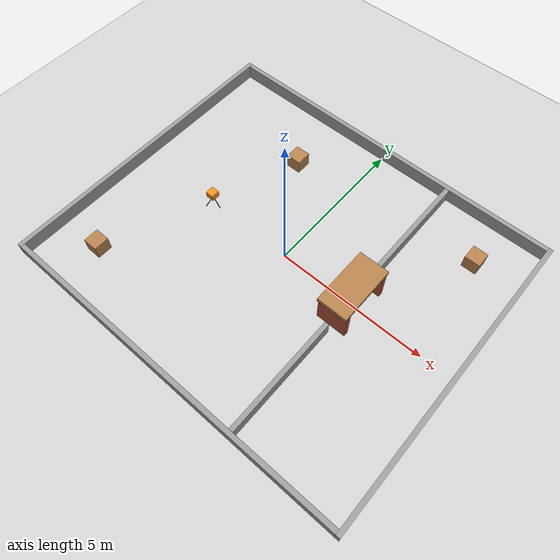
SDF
<?xml version="1.0"?>
<sdf version="1.6">
  <world name="fyp_arena">

    <include>
      <uri>model://sun</uri>
    </include>
    <include>
      <uri>model://ground_plane</uri>
    </include>

    <scene>
      <shadows>false</shadows>
    </scene>

    <!-- ==================== outer walls (in map) ==================== -->
    <model name="arena_walls">
      <static>true</static>
      <link name="link">
        <collision name="north_col">
          <pose>0 5.075 0.25 0 0 0</pose>
          <geometry><box><size>12.0 0.15 0.5</size></box></geometry>
        </collision>
        <visual name="north_vis">
          <pose>0 5.075 0.25 0 0 0</pose>
          <geometry><box><size>12.0 0.15 0.5</size></box></geometry>
          <material><script><uri>file://media/materials/scripts/gazebo.material</uri><name>Gazebo/Grey</name></script></material>
        </visual>
        <collision name="south_col">
          <pose>0 -5.075 0.25 0 0 0</pose>
          <geometry><box><size>12.0 0.15 0.5</size></box></geometry>
        </collision>
        <visual name="south_vis">
          <pose>0 -5.075 0.25 0 0 0</pose>
          <geometry><box><size>12.0 0.15 0.5</size></box></geometry>
          <material><script><uri>file://media/materials/scripts/gazebo.material</uri><name>Gazebo/Grey</name></script></material>
        </visual>
        <collision name="east_col">
          <pose>6.075 0 0.25 0 0 0</pose>
          <geometry><box><size>0.15 10.3 0.5</size></box></geometry>
        </collision>
        <visual name="east_vis">
          <pose>6.075 0 0.25 0 0 0</pose>
          <geometry><box><size>0.15 10.3 0.5</size></box></geometry>
          <material><script><uri>file://media/materials/scripts/gazebo.material</uri><name>Gazebo/Grey</name></script></material>
        </visual>
        <collision name="west_col">
          <pose>-6.075 0 0.25 0 0 0</pose>
          <geometry><box><size>0.15 10.3 0.5</size></box></geometry>
        </collision>
        <visual name="west_vis">
          <pose>-6.075 0 0.25 0 0 0</pose>
          <geometry><box><size>0.15 10.3 0.5</size></box></geometry>
          <material><script><uri>file://media/materials/scripts/gazebo.material</uri><name>Gazebo/Grey</name></script></material>
        </visual>
      </link>
    </model>

    <!-- ============ divider wall with doorway (in map) ============== -->
    <model name="divider_wall">
      <static>true</static>
      <link name="link">
        <collision name="north_seg_col">
          <pose>2.5 3.05 0.25 0 0 0</pose>
          <geometry><box><size>0.15 3.9 0.5</size></box></geometry>
        </collision>
        <visual name="north_seg_vis">
          <pose>2.5 3.05 0.25 0 0 0</pose>
          <geometry><box><size>0.15 3.9 0.5</size></box></geometry>
          <material><script><uri>file://media/materials/scripts/gazebo.material</uri><name>Gazebo/Grey</name></script></material>
        </visual>
        <collision name="south_seg_col">
          <pose>2.5 -3.05 0.25 0 0 0</pose>
          <geometry><box><size>0.15 3.9 0.5</size></box></geometry>
        </collision>
        <visual name="south_seg_vis">
          <pose>2.5 -3.05 0.25 0 0 0</pose>
          <geometry><box><size>0.15 3.9 0.5</size></box></geometry>
          <material><script><uri>file://media/materials/scripts/gazebo.material</uri><name>Gazebo/Grey</name></script></material>
        </visual>
      </link>
    </model>

    <!-- ================ landmark boxes (in map) ===================== -->
    <model name="landmark_1">
      <static>true</static>
      <pose>-2.0 3.0 0.25 0 0 0</pose>
      <link name="link">
        <collision name="col"><geometry><box><size>0.5 0.5 0.5</size></box></geometry></collision>
        <visual name="vis">
          <geometry><box><size>0.5 0.5 0.5</size></box></geometry>
          <material><script><uri>file://media/materials/scripts/gazebo.material</uri><name>Gazebo/Wood</name></script></material>
        </visual>
      </link>
    </model>
    <model name="landmark_2">
      <static>true</static>
      <pose>-4.5 -3.5 0.25 0 0 0</pose>
      <link name="link">
        <collision name="col"><geometry><box><size>0.5 0.5 0.5</size></box></geometry></collision>
        <visual name="vis">
          <geometry><box><size>0.5 0.5 0.5</size></box></geometry>
          <material><script><uri>file://media/materials/scripts/gazebo.material</uri><name>Gazebo/Wood</name></script></material>
        </visual>
      </link>
    </model>
    <model name="landmark_3">
      <static>true</static>
      <pose>4.5 3.5 0.25 0 0 0</pose>
      <link name="link">
        <collision name="col"><geometry><box><size>0.5 0.5 0.5</size></box></geometry></collision>
        <visual name="vis">
          <geometry><box><size>0.5 0.5 0.5</size></box></geometry>
          <material><script><uri>file://media/materials/scripts/gazebo.material</uri><name>Gazebo/Wood</name></script></material>
        </visual>
      </link>
    </model>

    <!-- ================== bridge (NOT in map) ======================= -->
    <!-- Opening: 1.5 m wide (between support inner faces at y = +/-0.75),
         1.05 m clearance under the deck. Sits in the divider doorway, so
         the only way to the east half is underneath it. -->
    <model name="bridge">
      <static>true</static>
      <link name="link">
        <collision name="support_left_col">
          <pose>2.5 0.825 0.525 0 0 0</pose>
          <geometry><box><size>1.0 0.15 1.05</size></box></geometry>
        </collision>
        <visual name="support_left_vis">
          <pose>2.5 0.825 0.525 0 0 0</pose>
          <geometry><box><size>1.0 0.15 1.05</size></box></geometry>
          <material><script><uri>file://media/materials/scripts/gazebo.material</uri><name>Gazebo/Bricks</name></script></material>
        </visual>
        <collision name="support_right_col">
          <pose>2.5 -0.825 0.525 0 0 0</pose>
          <geometry><box><size>1.0 0.15 1.05</size></box></geometry>
        </collision>
        <visual name="support_right_vis">
          <pose>2.5 -0.825 0.525 0 0 0</pose>
          <geometry><box><size>1.0 0.15 1.05</size></box></geometry>
          <material><script><uri>file://media/materials/scripts/gazebo.material</uri><name>Gazebo/Bricks</name></script></material>
        </visual>
        <collision name="deck_col">
          <pose>2.5 0 1.125 0 0 0</pose>
          <geometry><box><size>1.0 1.95 0.15</size></box></geometry>
        </collision>
        <visual name="deck_vis">
          <pose>2.5 0 1.125 0 0 0</pose>
          <geometry><box><size>1.0 1.95 0.15</size></box></geometry>
          <material><script><uri>file://media/materials/scripts/gazebo.material</uri><name>Gazebo/Wood</name></script></material>
        </visual>
      </link>
    </model>

    <!-- ================== tripod (NOT in map) ======================= -->
    <!-- Three thin legs (r = 12 mm), thin centre stick, box on top
         spanning z = 0.42-0.64 m. Leg feet on a 0.26 m radius circle. -->
    <model name="tripod">
      <static>true</static>
      <pose>-3.0 0 0 0 0 0</pose>
      <link name="link">
        <collision name="leg1_col">
          <pose>0.13 0 0.20 0 -0.576 0</pose>
          <geometry><cylinder><radius>0.012</radius><length>0.48</length></cylinder></geometry>
        </collision>
        <visual name="leg1_vis">
          <pose>0.13 0 0.20 0 -0.576 0</pose>
          <geometry><cylinder><radius>0.012</radius><length>0.48</length></cylinder></geometry>
          <material><script><uri>file://media/materials/scripts/gazebo.material</uri><name>Gazebo/DarkGrey</name></script></material>
        </visual>
        <collision name="leg2_col">
          <pose>-0.065 0.11258 0.20 0 -0.576 2.0944</pose>
          <geometry><cylinder><radius>0.012</radius><length>0.48</length></cylinder></geometry>
        </collision>
        <visual name="leg2_vis">
          <pose>-0.065 0.11258 0.20 0 -0.576 2.0944</pose>
          <geometry><cylinder><radius>0.012</radius><length>0.48</length></cylinder></geometry>
          <material><script><uri>file://media/materials/scripts/gazebo.material</uri><name>Gazebo/DarkGrey</name></script></material>
        </visual>
        <collision name="leg3_col">
          <pose>-0.065 -0.11258 0.20 0 -0.576 4.18879</pose>
          <geometry><cylinder><radius>0.012</radius><length>0.48</length></cylinder></geometry>
        </collision>
        <visual name="leg3_vis">
          <pose>-0.065 -0.11258 0.20 0 -0.576 4.18879</pose>
          <geometry><cylinder><radius>0.012</radius><length>0.48</length></cylinder></geometry>
          <material><script><uri>file://media/materials/scripts/gazebo.material</uri><name>Gazebo/DarkGrey</name></script></material>
        </visual>
        <collision name="stick_col">
          <pose>0 0 0.43 0 0 0</pose>
          <geometry><cylinder><radius>0.010</radius><length>0.14</length></cylinder></geometry>
        </collision>
        <visual name="stick_vis">
          <pose>0 0 0.43 0 0 0</pose>
          <geometry><cylinder><radius>0.010</radius><length>0.14</length></cylinder></geometry>
          <material><script><uri>file://media/materials/scripts/gazebo.material</uri><name>Gazebo/DarkGrey</name></script></material>
        </visual>
        <collision name="box_col">
          <pose>0 0 0.53 0 0 0</pose>
          <geometry><box><size>0.28 0.28 0.22</size></box></geometry>
        </collision>
        <visual name="box_vis">
          <pose>0 0 0.53 0 0 0</pose>
          <geometry><box><size>0.28 0.28 0.22</size></box></geometry>
          <material><script><uri>file://media/materials/scripts/gazebo.material</uri><name>Gazebo/Orange</name></script></material>
        </visual>
      </link>
    </model>

  </world>
</sdf>
